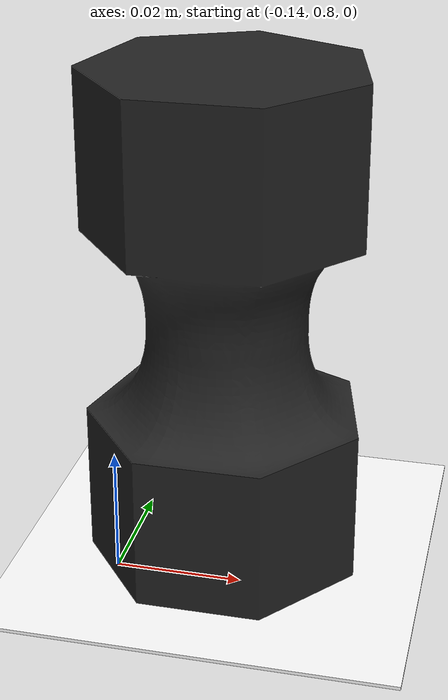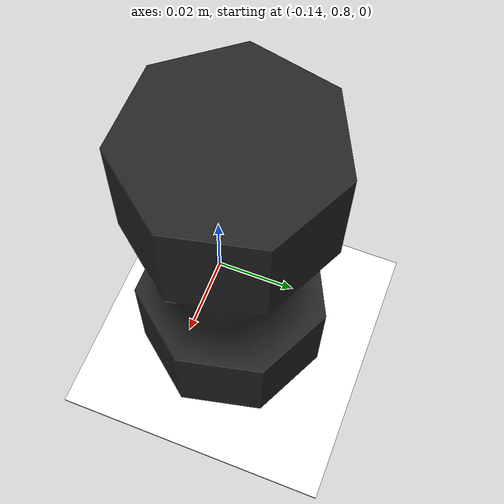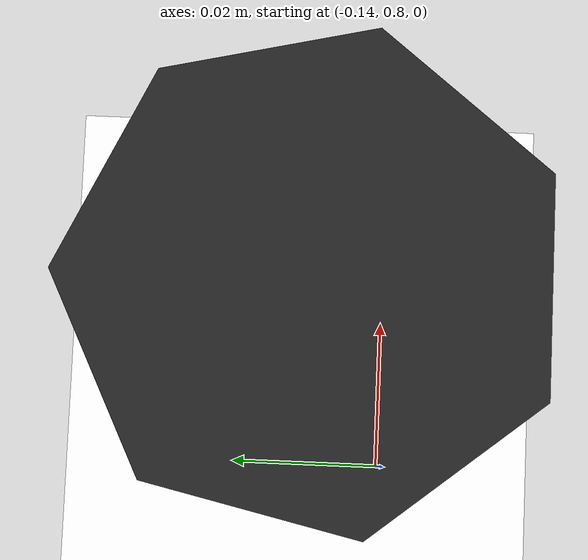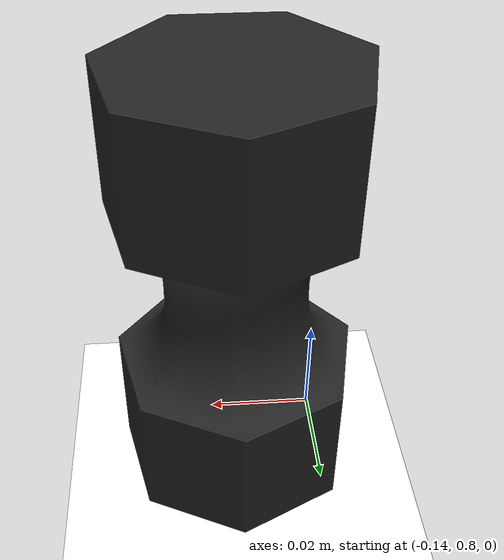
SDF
<?xml version="1.0" ?>
<sdf version="1.4">
  <world name="default">
    <gui>
      <camera name="user_camera">
        <pose>0 0 2.4 0 1.5708 -3.1415</pose>
      </camera>
    </gui>
    <scene>
      <ambient>0.5 0.5 0.5 1.0</ambient>
      <shadows>0</shadows>
    </scene>
    <include>
      <uri>model://ground_plane</uri>
    </include>
    <include>
      <uri>model://sun</uri>
    </include>
    <include>
      <uri>model://racetrack15</uri>
      <name>race_track15</name>
      <pose>0 0 0 0 0 0</pose>
    </include>
    <include>
      <uri>model://object</uri>
      <name>object</name>
      <pose>-0.134 0.790 0.0 0 0 0</pose>
    <include>
      <uri>model://object</uri>
      <name>object2</name>
      <pose>-0.697 0.025 0.0 0 0 0</pose>
    </include>
    </include>
  </world>
</sdf>

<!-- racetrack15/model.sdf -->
<sdf version='1.6'>
  <model name='race_track15'>
    <static>true</static>
    <link name='link'>
      <visual name='visual'>
        <geometry>
          <box>
            <size>1.477 1.750 0.000553</size>
          </box>
        </geometry>
        <material>
          <script>
            <name>RaceTrack15/track15</name>
	    <uri>model://racetrack15/materials/scripts</uri>
            <uri>model://racetrack15/materials/textures</uri>
          </script>
          <ambient>1 1 1 1</ambient>
          <diffuse>1 1 1 1</diffuse>
          <specular>0.01 0.01 0.01 1</specular>
          <emissive>1 1 1 1</emissive>
        </material>
        <transparency>0</transparency>
      </visual>
      <collision name='collision'>
        <geometry>
          <box>
            <size>1.477 1.750 0.000553</size>
          </box>
        </geometry>
	<surface>
          <friction>
            <ode>
              <mu>100</mu>
              <mu2>50</mu2>
            </ode>
          </friction>
        </surface>
      </collision>
    </link>
  </model>
</sdf>

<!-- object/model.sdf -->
<sdf version="1.6">
  <model name="object">
      <static>false</static>
      <link name="body">
        <pose>0 0 0 0 0 0</pose>

        <inertial>
          <mass>0.05</mass>
          <pose>0.01 0.021 0.04 0 0 0</pose>
          <inertia>
            <ixx>0.0003</ixx>
            <iyy>0.0002</iyy>
            <izz>0.0002</izz>
          </inertia>
      </inertial>

        <visual name="vis">
          <geometry>
            <mesh>
         	<uri>model://object/robot_object.dae</uri>
          </mesh>
          </geometry>
        </visual>

        <collision name="col">
          <geometry>
            <mesh>
             <uri>model://object/robot_object.dae</uri>
            </mesh>
          </geometry>
        </collision>
      </link>
  </model>
</sdf>
